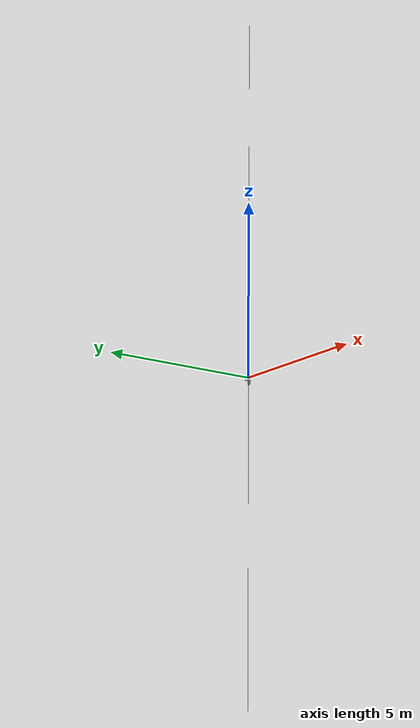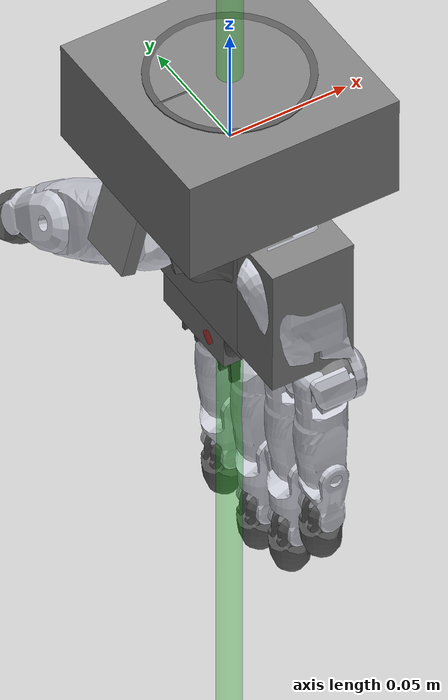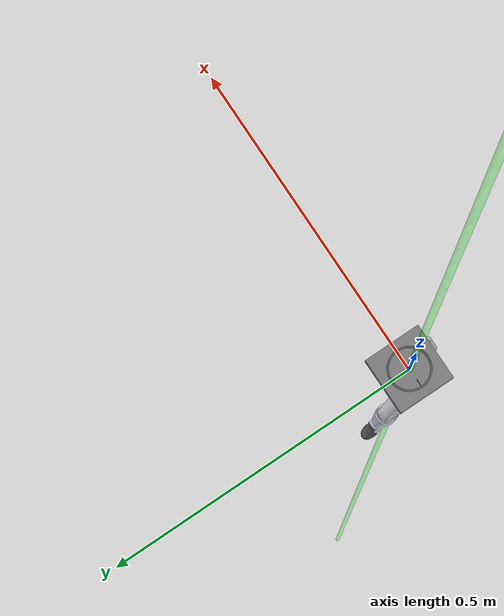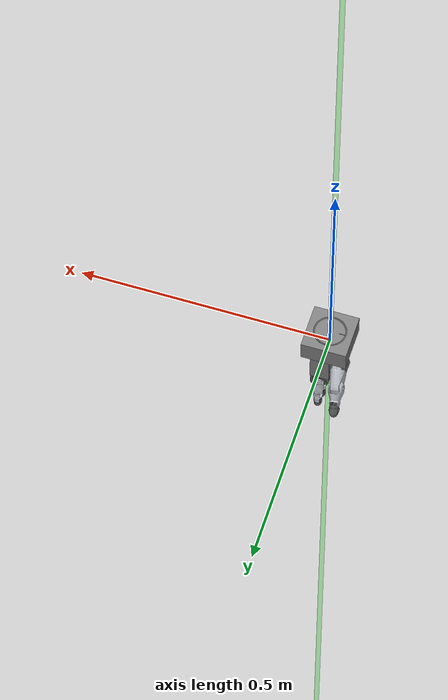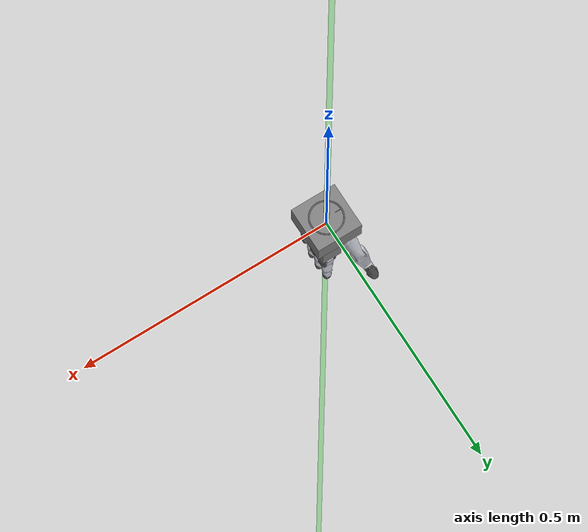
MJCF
<?xml version="1.0" ?>
<mujoco model="hand">
  <compiler angle="radian" autolimits="true"/>
  <visual>
    <global ellipsoidinertia="true"/>
  </visual>
  <default>
    <default class="schunk_svh_right_hand_finger">
      <joint damping="0.001" frictionloss="0.001"/>
    </default>
  </default>
  <asset>

    <material name="Metall_Alu_final" rgba="0.799102 0.806952 0.846873 1.0" specular="0.8" metallic="0.3"/>

    <material name="Metall_Daumen" rgba="0.350000 0.350000 0.350000 1.0" specular="0.7" />

    <mesh name="visual_base10" file="meshes/schunk_svh_hand/visual/base10.obj"/>
    <mesh name="visual_h10" file="meshes/schunk_svh_hand/visual/h10.obj"/>
    <mesh name="visual_h11" file="meshes/schunk_svh_hand/visual/h11.obj"/>
    <mesh name="visual_d10" file="meshes/schunk_svh_hand/visual/d10.obj"/>
    <mesh name="visual_d11" file="meshes/schunk_svh_hand/visual/d11.obj"/>
    <mesh name="collision_d11" file="meshes/schunk_svh_hand/collision/d11.obj"/>
    <mesh name="visual_d12" file="meshes/schunk_svh_hand/visual/d12.obj"/>
    <mesh name="collision_d12" file="meshes/schunk_svh_hand/collision/d12.obj"/>
    <mesh name="visual_d13" file="meshes/schunk_svh_hand/visual/d13.obj"/>
    <mesh name="collision_d13" file="meshes/schunk_svh_hand/collision/d13.obj"/>
    <mesh name="visual_f10_f20" file="meshes/schunk_svh_hand/visual/f10_f20.obj"/>
    <mesh name="visual_f11" file="meshes/schunk_svh_hand/visual/f11.obj"/>
    <mesh name="collision_f11" file="meshes/schunk_svh_hand/collision/f11.obj"/>
    <mesh name="visual_f12" file="meshes/schunk_svh_hand/visual/f12.obj"/>
    <mesh name="collision_f12" file="meshes/schunk_svh_hand/collision/f12.obj"/>
    <mesh name="visual_finger_tip" file="meshes/schunk_svh_hand/visual/finger_tip.obj"/>
    <mesh name="collision_finger_tip" file="meshes/schunk_svh_hand/collision/finger_tip.obj"/>
    <mesh name="visual_f21" file="meshes/schunk_svh_hand/visual/f21.obj"/>
    <mesh name="collision_f21" file="meshes/schunk_svh_hand/collision/f21.obj"/>
    <mesh name="visual_f22_f32" file="meshes/schunk_svh_hand/visual/f22_f32.obj"/>
    <mesh name="collision_f22_f32" file="meshes/schunk_svh_hand/collision/f22_f32.obj"/>
    <mesh name="visual_f30_f40" file="meshes/schunk_svh_hand/visual/f30_f40.obj"/>
    <mesh name="visual_f31" file="meshes/schunk_svh_hand/visual/f31.obj"/>
    <mesh name="collision_f31" file="meshes/schunk_svh_hand/collision/f31.obj"/>
    <mesh name="visual_f41" file="meshes/schunk_svh_hand/visual/f41.obj"/>
    <mesh name="collision_f41" file="meshes/schunk_svh_hand/collision/f41.obj"/>
    <mesh name="visual_f42" file="meshes/schunk_svh_hand/visual/f42.obj"/>
    <mesh name="collision_f42" file="meshes/schunk_svh_hand/collision/f42.obj"/>
  </asset>
  <actuator>
    <motor name="right_hand_Thumb_Flexion" joint="right_hand_Thumb_Flexion" ctrlrange="-50 50" ctrllimited="true"/>
    <motor name="right_hand_Thumb_Opposition" joint="right_hand_Thumb_Opposition" ctrlrange="-50 50" ctrllimited="true"/>
    <motor name="right_hand_j5" joint="right_hand_j5" ctrlrange="-50 50" ctrllimited="true"/>
    <motor name="right_hand_j3" joint="right_hand_j3" ctrlrange="-50 50" ctrllimited="true"/>
    <motor name="right_hand_j4" joint="right_hand_j4" ctrlrange="-50 50" ctrllimited="true"/>
    <motor name="right_hand_Index_Finger_Distal" joint="right_hand_Index_Finger_Distal" ctrlrange="-50 50" ctrllimited="true"/>
    <motor name="right_hand_Index_Finger_Proximal" joint="right_hand_Index_Finger_Proximal" ctrlrange="-50 50" ctrllimited="true"/>
    <motor name="right_hand_j14" joint="right_hand_j14" ctrlrange="-50 50" ctrllimited="true"/>
    <motor name="right_hand_Middle_Finger_Proximal" joint="right_hand_Middle_Finger_Proximal" ctrlrange="-50 50" ctrllimited="true"/>
    <motor name="right_hand_Middle_Finger_Distal" joint="right_hand_Middle_Finger_Distal" ctrlrange="-50 50" ctrllimited="true"/>
    <motor name="right_hand_j15" joint="right_hand_j15" ctrlrange="-50 50" ctrllimited="true"/>
    <motor name="right_hand_Ring_Finger" joint="right_hand_Ring_Finger" ctrlrange="-50 50" ctrllimited="true"/>
    <motor name="right_hand_j12" joint="right_hand_j12" ctrlrange="-50 50" ctrllimited="true"/>
    <motor name="right_hand_j16" joint="right_hand_j16" ctrlrange="-50 50" ctrllimited="true"/>
    <motor name="right_hand_Pinky" joint="right_hand_Pinky" ctrlrange="-50 50" ctrllimited="true"/>
    <motor name="right_hand_j13" joint="right_hand_j13" ctrlrange="-50 50" ctrllimited="true"/>
    <motor name="right_hand_j17" joint="right_hand_j17" ctrlrange="-50 50" ctrllimited="true"/>
    <motor name="right_hand_index_spread" joint="right_hand_index_spread" ctrlrange="-50 50" ctrllimited="true"/>
    <motor name="right_hand_ring_spread" joint="right_hand_ring_spread" ctrlrange="-50 50" ctrllimited="true"/>
    <motor name="right_hand_Finger_Spread" joint="right_hand_Finger_Spread" ctrlrange="-50 50" ctrllimited="true"/>
  </actuator>
  <worldbody>
    <body name="right_gripper" pos="0 0 0" quat="0 0 -1 0">
      <site name="ft_frame" pos="0 0 0" size="0.01 0.01 0.01" rgba="1 0 0 1" type="sphere" material="Metall_Alu_final"  group="1"/>
      <inertial pos="0 0 0.17" quat="0.707107 0.707107 0 0" mass="0.3" diaginertia="0.09 0.07 0.05"/>
      <body name="eef" pos="0 0 0.097" quat="1 0 0 0">
        <site name="grip_site" pos="0 0 0" size="0.01 0.01 0.01" rgba="1 0 0 0.5" type="sphere" group="1"/>
        <site name="ee_x" pos="0.1 0 0" size="0.005 .1" quat="0.707105  0 0.707108 0 " rgba="1 0 0 0" type="cylinder" group="1"/>
        <site name="ee_y" pos="0 0.1 0" size="0.005 .1" quat="0.707105 0.707108 0 0" rgba="0 1 0 0" type="cylinder" material="Metall_Daumen"  group="1"/>
        <site name="ee_z" pos="0 0 0.1" size="0.005 .1" quat="1 0 0 0" rgba="0 0 1 0" type="cylinder" group="1"/>
        <site name="grip_site_cylinder" pos="0 0 0" size="0.005 10" rgba="0 1 0 0.3" type="cylinder" group="1"/>
      </body>
      <!--Start of base-->
      <body name="hand_mount">
      <!--Start of hand base-->
      <body name="right_hand_base_link" pos="0.0 0.0 0.0" quat="0.7071090180427968 0.0 0.0 -0.7071045443232222">
        <inertial pos="0 0 0" quat="1.0 0.0 0.0 0.0" mass="0.001" diaginertia="1.0e-08 1.0e-08 1.0e-08"/>
        <geom pos="0.0 0.0 -0.032" quat="1.0 0.0 0.0 0.0" name="right_hand_base_link_visual" material="Metall_Daumen"  group="1" contype="0" conaffinity="0" mesh="visual_base10" type="mesh"/>
        <geom pos="0.0 0.0 -0.009" quat="1.0 0.0 0.0 0.0" name="right_hand_base_link_collision" group="0" type="box" size="0.045 0.045 0.0225"/>
        <!--Start of hand base-->
        <body name="right_hand_e1" pos="0.0 -0.01313 0.0" quat="1.0 0.0 0.0 0.0">
          <inertial pos="0 0 0" quat="1.0 0.0 0.0 0.0" mass="0.001" diaginertia="1.0e-08 1.0e-08 1.0e-08"/>
          <geom pos="0.0 0.01313 0.0" quat="1.0 0.0 0.0 0.0" name="right_hand_e1_visual" material="Metall_Daumen"  group="1" contype="0" conaffinity="0" mesh="visual_h10" type="mesh"/>
          <geom pos="0.0 0.01313 0.013" quat="1.0 0.0 0.0 0.0" name="right_hand_e1_collision" group="0" type="box" size="0.025 0.025 0.013"/>
          <geom pos="-0.00573 0.0035 0.05747" quat="1.0 0.0 0.0 0.0" name="right_hand_e1_collision_1" group="0" type="box" size="0.0292 0.019 0.03205"/>
          <geom pos="-0.01 0.0035 0.096" quat="1.0 0.0 0.0 0.0" name="right_hand_e1_collision_2" group="0" type="box" size="0.021 0.019 0.0075"/>
          <!--Start of right_hand_z-->
          <body name="right_hand_z" pos="-0.0169 0.02626 0.0" quat="0.7009859594636422 -0.09230556888501792 0.09228677062823984 0.7011287460621343">
            <joint name="right_hand_Thumb_Opposition" type="hinge" class="schunk_svh_right_hand_finger" axis="0 0 -1" range="0.0 0.9879"/>
            <inertial pos="0 0 0" quat="1.0 0.0 0.0 0.0" mass="0.001" diaginertia="1.0e-08 1.0e-08 1.0e-08"/>
            <geom pos="0.0 0.0 0.02442" quat="1.0 0.0 0.0 0.0" name="right_hand_z_visual" material="Metall_Alu_final"  group="1" contype="0" conaffinity="0" mesh="visual_d10" type="mesh"/>
            <geom pos="0.0 0.0 0.02842" quat="1.0 0.0 0.0 0.0" name="right_hand_z_collision" group="0" type="box" size="0.012 0.0094 0.004"/>
            <geom pos="0.0125 0.0 0.04292" quat="1.0 0.0 0.0 0.0" name="right_hand_z_collision_1" group="0" type="box" size="0.003 0.012 0.0165"/>
            <geom pos="-0.0125 0.0 0.04292" quat="1.0 0.0 0.0 0.0" name="right_hand_z_collision_2" group="0" type="box" size="0.003 0.012 0.0165"/>
            <!--Start of right_hand_a-->
            <body name="right_hand_a" pos="0.0 0.0 0.04596" quat="0.3297870063394784 0.6254943170001938 0.32977909159097296 0.6254943170001938">
              <joint name="right_hand_Thumb_Flexion" type="hinge" class="schunk_svh_right_hand_finger" axis="0 0 1" range="0.0 0.9704"/>
              <inertial pos="0 0 0" quat="1.0 0.0 0.0 0.0" mass="0.001" diaginertia="1.0e-08 1.0e-08 1.0e-08"/>
              <geom pos="0.0 0.0 0.0" quat="1.0 0.0 0.0 0.0" name="right_hand_a_visual" material="Metall_Alu_final"  group="1" contype="0" conaffinity="0" mesh="visual_d11" type="mesh"/>
              <geom pos="0.0 0.0 0.0" quat="1.0 0.0 0.0 0.0" name="right_hand_a_collision" group="0" mesh="collision_d11" type="mesh"/>
              <!--Start of right_hand_b-->
              <body name="right_hand_b" pos="0.0485 0.0 0.0" quat="1.0 0.0 0.0 0.0">
                <joint name="right_hand_j3" type="hinge" class="schunk_svh_right_hand_finger" axis="0 0 1" range="0.0 0.98506"/>
                <inertial pos="0 0 0" quat="1.0 0.0 0.0 0.0" mass="0.001" diaginertia="1.0e-08 1.0e-08 1.0e-08"/>
                <geom pos="0.0 0.0 0.0" quat="1.0 0.0 0.0 0.0" name="right_hand_b_visual" material="Metall_Alu_final"  group="1" contype="0" conaffinity="0" mesh="visual_d12" type="mesh"/>
                <geom pos="0.0 0.0 0.0" quat="1.0 0.0 0.0 0.0" name="right_hand_b_collision" group="0" mesh="collision_d12" type="mesh"/>
                <!--Start of right_hand_c-->
                <body name="right_hand_c" pos="0.03 0.0 0.0" quat="1.0 0.0 0.0 0.0">
                  <joint name="right_hand_j4" type="hinge" class="schunk_svh_right_hand_finger" axis="0 0 1" range="0.0 1.406"/>
                  <inertial pos="0.007 0.000 0.000" quat="1.0 0.0 0.0 0.0" mass="0.02" diaginertia="1e-5 2e-5 2e-5"/>
                  <geom pos="0.0 0.0 0.0" quat="1.0 0.0 0.0 0.0" name="right_hand_c_visual" material="Metall_Daumen"  group="1" contype="0" conaffinity="0" mesh="visual_d13" type="mesh"/>
                  <geom pos="0.0 0.0 0.0" quat="1.0 0.0 0.0 0.0" name="right_hand_c_collision" group="0" mesh="collision_d13" type="mesh"/>
                  <body name="thumb_tip">
                      <site name="thumb_tip" pos="0.014 0.000 0.000" rgba="0 0 1 1" size="0.0025" group="2"/>
                  </body>
                </body>
                <!--End of right_hand_c-->
              </body>
              <!--End of right_hand_b-->
            </body>
            <!--End of right_hand_a-->
          </body>
          <!--End of right_hand_z-->
          <!--Start of right_hand_virtual_l-->
          <body name="right_hand_virtual_l" pos="-0.025 0.0 0.11" quat="0.5000481633973738 0.49995183660262615 -0.49999999768028713 0.49999999768028713">
            <joint name="right_hand_index_spread" type="hinge" class="schunk_svh_right_hand_finger" axis="0 0 1" range="0.0 0.28833"/>
            <inertial pos="0 0 0" quat="1.0 0.0 0.0 0.0" mass="0.001" diaginertia="1.0e-08 1.0e-08 1.0e-08"/>
            <geom pos="0.0 0.0 0.01321" quat="1.0 0.0 0.0 0.0" name="right_hand_virtual_l_visual" material="Metall_Alu_final"  group="1" contype="0" conaffinity="0" mesh="visual_f10_f20" type="mesh"/>
            <geom pos="0.0 0.0 0.00121" quat="1.0 0.0 0.0 0.0" name="right_hand_virtual_l_collision" group="0" type="sphere" size="0.01"/>
            <!--Start of right_hand_l-->
            <body name="right_hand_l" pos="0.0 0.0 0.0" quat="0.7071408370313327 -0.7070727237014777 0.0 0.0">
              <joint name="right_hand_Index_Finger_Proximal" type="hinge" class="schunk_svh_right_hand_finger" axis="0 0 1" range="0.0 0.79849"/>
              <inertial pos="0 0 0" quat="1.0 0.0 0.0 0.0" mass="0.001" diaginertia="1.0e-08 1.0e-08 1.0e-08"/>
              <geom pos="0.0 0.0 0.0" quat="1.0 0.0 0.0 0.0" name="right_hand_l_visual" material="Metall_Alu_final"  group="1" contype="0" conaffinity="0" mesh="visual_f11" type="mesh"/>
              <geom pos="0.0 0.0 0.0" quat="1.0 0.0 0.0 0.0" name="right_hand_l_collision" group="0" mesh="collision_f11" type="mesh"/>
              <!--Start of right_hand_p-->
              <body name="right_hand_p" pos="0.04804 0.0 0.0" quat="1.0 0.0 0.0 0.0">
                <joint name="right_hand_Index_Finger_Distal" type="hinge" class="schunk_svh_right_hand_finger" axis="0 0 1" range="0 1.334"/>
                <inertial pos="0.01 0.000 0.000" quat="1.0 0.0 0.0 0.0" mass="0.024" diaginertia="1e-6 3e-6 2e-6"/>
                <geom pos="0.0 0.0 0.0" quat="1.0 0.0 0.0 0.0" name="right_hand_p_visual" material="Metall_Alu_final"  group="1" contype="0" conaffinity="0" mesh="visual_f12" type="mesh"/>
                <geom pos="0.0 0.0 0.0" quat="1.0 0.0 0.0 0.0" name="right_hand_p_collision" group="0" mesh="collision_f12" type="mesh"/>
                <!--Start of right_hand_t-->
                <body name="right_hand_t" pos="0.026 0.0 0.0" quat="1.0 0.0 0.0 0.0">
                  <joint name="right_hand_j14" type="hinge" class="schunk_svh_right_hand_finger" axis="0 0 1" range="0 1.394"/>
                  <inertial pos="0.007 0.000 0.000" quat="1.0 0.0 0.0 0.0" mass="0.02" diaginertia="1e-5 2e-5 2e-5"/>
                  <geom pos="0.0 0.0 0.0" quat="1.0 0.0 0.0 0.0" name="right_hand_t_visual" material="Metall_Daumen"  group="1" contype="0" conaffinity="0" mesh="visual_finger_tip" type="mesh"/>
                  <geom pos="0.0 0.0 0.0" quat="1.0 0.0 0.0 0.0" name="right_hand_t_collision" group="0" mesh="collision_finger_tip" type="mesh"/>
                  <body name="index_tip">
                      <site name="index_tip" pos="0.014 0.000 0.000" rgba="0 0 1 1" size="0.0025" group="2"/>
                  </body>
                </body>
                <!--End of right_hand_t-->
              </body>
              <!--End of right_hand_p-->
            </body>
            <!--End of right_hand_l-->
          </body>
          <!--End of right_hand_virtual_l-->
          <!--Start of right_hand_virtual_k-->
          <body name="right_hand_virtual_k" pos="0.0 0.0 0.11" quat="0.5000481633973738 0.49995183660262615 -0.49999999768028713 0.49999999768028713">
            <inertial pos="0 0 0" quat="1.0 0.0 0.0 0.0" mass="0.001" diaginertia="1.0e-08 1.0e-08 1.0e-08"/>
            <geom pos="0.0 0.0 0.01321" quat="1.0 0.0 0.0 0.0" name="right_hand_virtual_k_visual" material="Metall_Alu_final"  group="1" contype="0" conaffinity="0" mesh="visual_f10_f20" type="mesh"/>
            <geom pos="0.0 0.0 0.00321" quat="1.0 0.0 0.0 0.0" name="right_hand_virtual_k_collision" group="0" type="sphere" size="0.01"/>
            <!--Start of right_hand_k-->
            <body name="right_hand_k" pos="0.0 0.0 0.0" quat="0.7071408370313327 -0.7070727237014777 0.0 0.0">
              <joint name="right_hand_Middle_Finger_Proximal" type="hinge" class="schunk_svh_right_hand_finger" axis="0 0 1" range="0.0 0.79849"/>
              <inertial pos="0 0 0" quat="1.0 0.0 0.0 0.0" mass="0.001" diaginertia="1.0e-08 1.0e-08 1.0e-08"/>
              <geom pos="0.0 0.0 0.0" quat="1.0 0.0 0.0 0.0" name="right_hand_k_visual" material="Metall_Alu_final"  group="1" contype="0" conaffinity="0" mesh="visual_f21" type="mesh"/>
              <geom pos="0.0 0.0 0.0" quat="1.0 0.0 0.0 0.0" name="right_hand_k_collision" group="0" mesh="collision_f21" type="mesh"/>
              <!--Start of right_hand_o-->
              <body name="right_hand_o" pos="0.05004 0.0 0.0" quat="1.0 0.0 0.0 0.0">
                <joint name="right_hand_Middle_Finger_Distal" type="hinge" class="schunk_svh_right_hand_finger" axis="0 0 1" range="0 1.334"/>
                <inertial pos="0 0 0" quat="1.0 0.0 0.0 0.0" mass="0.001" diaginertia="1.0e-08 1.0e-08 1.0e-08"/>
                <geom pos="0.0 0.0 0.0" quat="1.0 0.0 0.0 0.0" name="right_hand_o_visual" material="Metall_Alu_final"  group="1" contype="0" conaffinity="0" mesh="visual_f22_f32" type="mesh"/>
                <geom pos="0.0 0.0 0.0" quat="1.0 0.0 0.0 0.0" name="right_hand_o_collision" group="0" mesh="collision_f22_f32" type="mesh"/>
                <!--Start of right_hand_s-->
                <body name="right_hand_s" pos="0.032 0.0 0.0" quat="1.0 0.0 0.0 0.0">
                  <joint name="right_hand_j15" type="hinge" class="schunk_svh_right_hand_finger" axis="0 0 1" range="0 1.334"/>
                  <inertial pos="0.007 0.000 0.000" quat="1.0 0.0 0.0 0.0" mass="0.02" diaginertia="1e-5 2e-5 2e-5"/>
                  <geom pos="0.0 0.0 0.0" quat="1.0 0.0 0.0 0.0" name="right_hand_s_visual" material="Metall_Daumen"  group="1" contype="0" conaffinity="0" mesh="visual_finger_tip" type="mesh"/>
                  <geom pos="0.0 0.0 0.0" quat="1.0 0.0 0.0 0.0" name="right_hand_s_collision" group="0" mesh="collision_finger_tip" type="mesh"/>
                  <body name="middle_tip">
                      <site name="middle_tip" pos="0.014 0.000 0.000" rgba="0 0 1 1" size="0.0025" group="2"/>
                  </body>
                </body>
                <!--End of right_hand_s-->
              </body>
              <!--End of right_hand_o-->
            </body>
            <!--End of right_hand_k-->
          </body>
          <!--End of right_hand_virtual_k-->
          <!--Start of right_hand_e2-->
          <body name="right_hand_e2" pos="0.0184 0.006 0.0375" quat="1.0 0.0 0.0 0.0">
            <joint name="right_hand_j5" type="hinge" class="schunk_svh_right_hand_finger" axis="0 0 1" range="0.0 0.98786"/>
            <inertial pos="0 0 0" quat="1.0 0.0 0.0 0.0" mass="0.001" diaginertia="1.0e-08 1.0e-08 1.0e-08"/>
            <geom pos="-0.0007 0.0 -0.01002" quat="1.0 0.0 0.0 0.0" name="right_hand_e2_visual" material="Metall_Alu_final"  group="1" contype="0" conaffinity="0" mesh="visual_h11" type="mesh"/>
            <geom pos="0.016 0.0 0.02" quat="1.0 0.0 0.0 0.0" name="right_hand_e2_collision" group="0" type="box" size="0.0123 0.0175 0.0282"/>
            <geom pos="0.0032 -0.0083 0.048" quat="1.0 0.0 0.0 0.0" name="right_hand_e2_collision_1" group="0" type="box" size="0.006 0.009 0.0105"/>
            <!--Start of right_hand_virtual_j-->
            <body name="right_hand_virtual_j" pos="0.003855 -0.006 0.0655" quat="0.5000481633973738 -0.49999999768028713 -0.49999999768028713 -0.49995183660262615">
              <joint name="right_hand_ring_spread" type="hinge" class="schunk_svh_right_hand_finger" axis="0 0 1" range="0.0 0.28833"/>
              <inertial pos="0 0 0" quat="1.0 0.0 0.0 0.0" mass="0.001" diaginertia="1.0e-08 1.0e-08 1.0e-08"/>
              <geom pos="0.0 0.0 -0.01321" quat="1.0 0.0 0.0 0.0" name="right_hand_virtual_j_visual" material="Metall_Alu_final"  group="1" contype="0" conaffinity="0" mesh="visual_f30_f40" type="mesh"/>
              <geom pos="0.0 0.0 -0.00321" quat="1.0 0.0 0.0 0.0" name="right_hand_virtual_j_collision" group="0" type="sphere" size="0.01"/>
              <!--Start of right_hand_j-->
              <body name="right_hand_j" pos="0.0 0.0 0.0" quat="0.7071408370313327 0.7070727237014777 0.0 0.0">
                <joint name="right_hand_Ring_Finger" type="hinge" class="schunk_svh_right_hand_finger" axis="0 0 1" range="0.0 0.98175"/>
                <inertial pos="0 0 0" quat="1.0 0.0 0.0 0.0" mass="0.001" diaginertia="1.0e-08 1.0e-08 1.0e-08"/>
                <geom pos="0.0 0.0 0.0" quat="1.0 0.0 0.0 0.0" name="right_hand_j_visual" material="Metall_Alu_final"  group="1" contype="0" conaffinity="0" mesh="visual_f31" type="mesh"/>
                <geom pos="0.0 0.0 0.0" quat="1.0 0.0 0.0 0.0" name="right_hand_j_collision" group="0" mesh="collision_f31" type="mesh"/>
                <!--Start of right_hand_n-->
                <body name="right_hand_n" pos="0.05004 0.0 0.0" quat="1.0 0.0 0.0 0.0">
                  <joint name="right_hand_j12" type="hinge" class="schunk_svh_right_hand_finger" axis="0 0 1" range="0 1.334"/>
                  <inertial pos="0 0 0" quat="1.0 0.0 0.0 0.0" mass="0.001" diaginertia="1.0e-08 1.0e-08 1.0e-08"/>
                  <geom pos="0.0 0.0 0.0" quat="1.0 0.0 0.0 0.0" name="right_hand_n_visual" material="Metall_Alu_final"  group="1" contype="0" conaffinity="0" mesh="visual_f22_f32" type="mesh"/>
                  <geom pos="0.0 0.0 0.0" quat="1.0 0.0 0.0 0.0" name="right_hand_n_collision" group="0" mesh="collision_f22_f32" type="mesh"/>
                  <!--Start of right_hand_r-->
                  <body name="right_hand_r" pos="0.032 0.0 0.0" quat="1.0 0.0 0.0 0.0">
                    <joint name="right_hand_j16" type="hinge" class="schunk_svh_right_hand_finger" axis="0 0 1" range="0 1.395"/>
                    <inertial pos="0.007 0.000 0.000" quat="1.0 0.0 0.0 0.0" mass="0.02" diaginertia="1e-5 2e-5 2e-5"/>
                    <geom pos="0.0 0.0 0.0" quat="1.0 0.0 0.0 0.0" name="right_hand_r_visual" material="Metall_Daumen"  group="1" contype="0" conaffinity="0" mesh="visual_finger_tip" type="mesh"/>
                    <geom pos="0.0 0.0 0.0" quat="1.0 0.0 0.0 0.0" name="right_hand_r_collision" group="0" mesh="collision_finger_tip" type="mesh"/>
                    <body name="ring_tip">
                        <site name="ring_tip" pos="0.014 0.000 0.000" rgba="0 0 1 1" size="0.0025" group="2"/>
                    </body>
                  </body>
                  <!--End of right_hand_r-->
                </body>
                <!--End of right_hand_n-->
              </body>
              <!--End of right_hand_j-->
            </body>
            <!--End of right_hand_virtual_j-->
            <!--Start of right_hand_virtual_i-->
            <body name="right_hand_virtual_i" pos="0.025355 -0.006 0.056" quat="0.5000481633973738 -0.49999999768028713 -0.49999999768028713 -0.49995183660262615">
              <joint name="right_hand_Finger_Spread" type="hinge" class="schunk_svh_right_hand_finger" axis="0 0 1" range="0.0 0.5829"/>
              <inertial pos="0 0 0" quat="1.0 0.0 0.0 0.0" mass="0.001" diaginertia="1.0e-08 1.0e-08 1.0e-08"/>
              <geom pos="0.0 0.0 -0.01321" quat="1.0 0.0 0.0 0.0" name="right_hand_virtual_i_visual" material="Metall_Alu_final"  group="1" contype="0" conaffinity="0" mesh="visual_f30_f40" type="mesh"/>
              <geom pos="0.0 0.0 -0.00321" quat="1.0 0.0 0.0 0.0" name="right_hand_virtual_i_collision" group="0" type="sphere" size="0.01"/>
              <!--Start of right_hand_i-->
              <body name="right_hand_i" pos="0.0 0.0 0.0" quat="0.7071408370313327 0.7070727237014777 0.0 0.0">
                <joint name="right_hand_Pinky" type="hinge" class="schunk_svh_right_hand_finger" axis="0 0 1" range="0.0 0.98175"/>
                <inertial pos="0 0 0" quat="1.0 0.0 0.0 0.0" mass="0.001" diaginertia="1.0e-08 1.0e-08 1.0e-08"/>
                <geom pos="0.0 0.0 0.0" quat="1.0 0.0 0.0 0.0" name="right_hand_i_visual" material="Metall_Alu_final"  group="1" contype="0" conaffinity="0" mesh="visual_f41" type="mesh"/>
                <geom pos="0.0 0.0 0.0" quat="1.0 0.0 0.0 0.0" name="right_hand_i_collision" group="0" mesh="collision_f41" type="mesh"/>
                <!--Start of right_hand_m-->
                <body name="right_hand_m" pos="0.04454 0.0 0.0" quat="1.0 0.0 0.0 0.0">
                  <joint name="right_hand_j13" type="hinge" class="schunk_svh_right_hand_finger" axis="0 0 1" range="0 1.334"/>
                  <inertial pos="0.007 0.000 0.000" quat="1.0 0.0 0.0 0.0" mass="0.02" diaginertia="8e-7 2e-6 2e-6"/>
                  <geom pos="0.0 0.0 0.0" quat="1.0 0.0 0.0 0.0" name="right_hand_m_visual" material="Metall_Alu_final"  group="1" contype="0" conaffinity="0" mesh="visual_f42" type="mesh"/>
                  <geom pos="0.0 0.0 0.0" quat="1.0 0.0 0.0 0.0" name="right_hand_m_collision" group="0" mesh="collision_f42" type="mesh"/>
                  <!--Start of right_hand_q-->
                  <body name="right_hand_q" pos="0.022 0.0 0.0" quat="1.0 0.0 0.0 0.0">
                    <joint name="right_hand_j17" type="hinge" class="schunk_svh_right_hand_finger" axis="0 0 1" range="0 1.3971"/>
                    <inertial pos="0.007 0.000 0.000" quat="1.0 0.0 0.0 0.0" mass="0.02" diaginertia="1e-5 2e-5 2e-5"/>
                    <geom pos="0.0 0.0 0.0" quat="1.0 0.0 0.0 0.0" name="right_hand_q_visual" material="Metall_Daumen"  group="1" contype="0" conaffinity="0" mesh="visual_finger_tip" type="mesh"/>
                    <geom pos="0.0 0.0 0.0" quat="1.0 0.0 0.0 0.0" name="right_hand_q_collision" group="0" mesh="collision_finger_tip" type="mesh"/>
                    <body name="pinky_tip">
                        <site name="pinky_tip" pos="0.014 0.000 0.000" rgba="0 0 1 1" size="0.0025" group="2"/>
                    </body>
                  </body>
                  <!--End of right_hand_q-->
                </body>
                <!--End of right_hand_m-->
              </body>
              <!--End of right_hand_i-->
            </body>
            <!--End of right_hand_virtual_i-->
          </body>
          <!--End of right_hand_e2-->
        </body>
        <!--End of hand base-->
      </body>
      <!--End of hand base-->
    </body>
    <!--End of base-->
    </body>
  </worldbody>
  <contact>
    <exclude body1="right_hand_e1" body2="right_hand_z"/>
    <exclude body1="right_hand_base_link" body2="right_hand_e1"/>
    <exclude body1="right_hand_e1" body2="right_hand_a"/>
    <exclude body1="right_hand_e1" body2="right_hand_b"/>
    <exclude body1="right_hand_e1" body2="right_hand_e2"/>
    <exclude body1="right_hand_e1" body2="right_hand_virtual_l"/>
    <exclude body1="right_hand_e1" body2="right_hand_virtual_k"/>
    <exclude body1="right_hand_e1" body2="right_hand_virtual_i"/>
    <exclude body1="right_hand_e1" body2="right_hand_virtual_j"/>
    <exclude body1="right_hand_virtual_l" body2="right_hand_l"/>
    <exclude body1="right_hand_virtual_k" body2="right_hand_k"/>
    <exclude body1="right_hand_virtual_i" body2="right_hand_i"/>
    <exclude body1="right_hand_virtual_j" body2="right_hand_j"/>
    <exclude body1="right_hand_virtual_l" body2="right_hand_virtual_k"/>
    <exclude body1="right_hand_virtual_k" body2="right_hand_virtual_i"/>
    <exclude body1="right_hand_virtual_i" body2="right_hand_virtual_j"/>
  </contact>
  <sensor>
    <force name="force_ee" site="ft_frame"/>
    <torque name="torque_ee" site="ft_frame"/>
  </sensor>
</mujoco>
